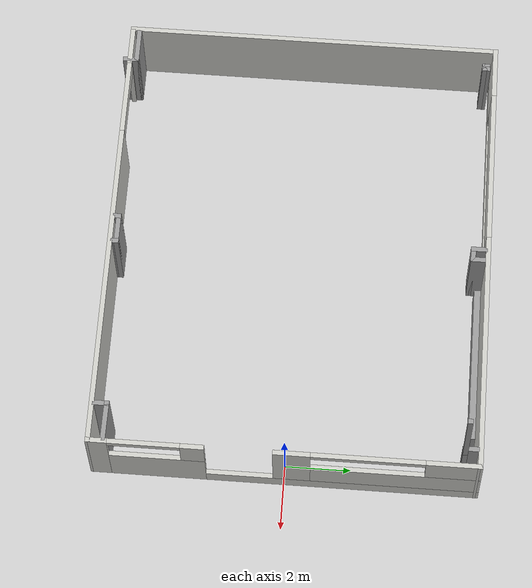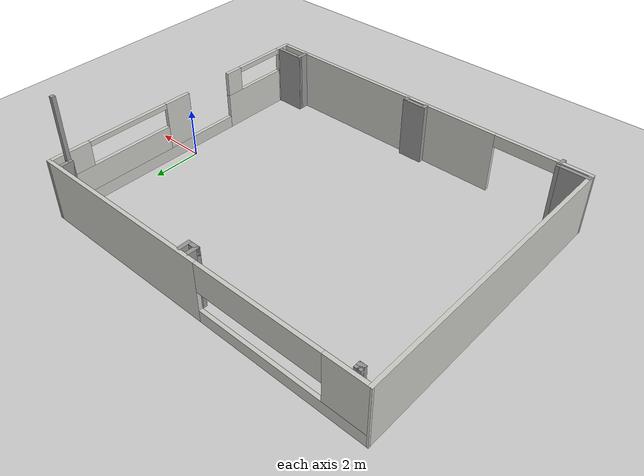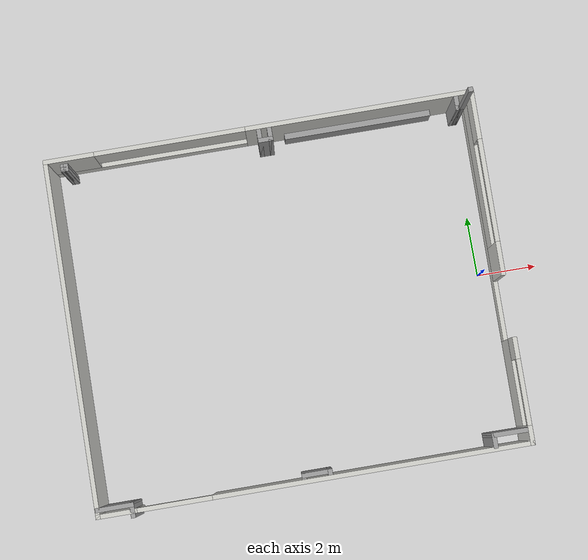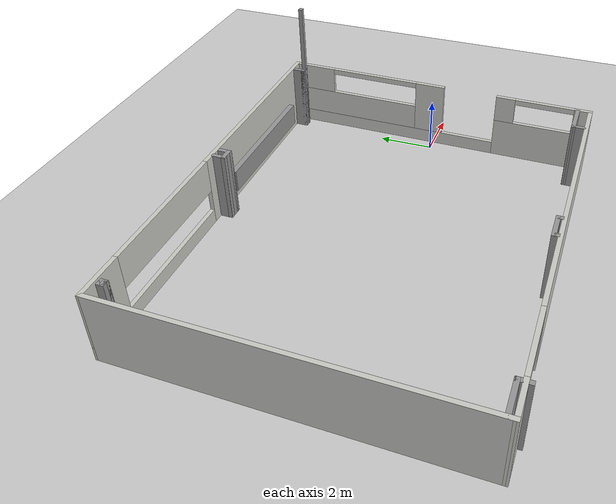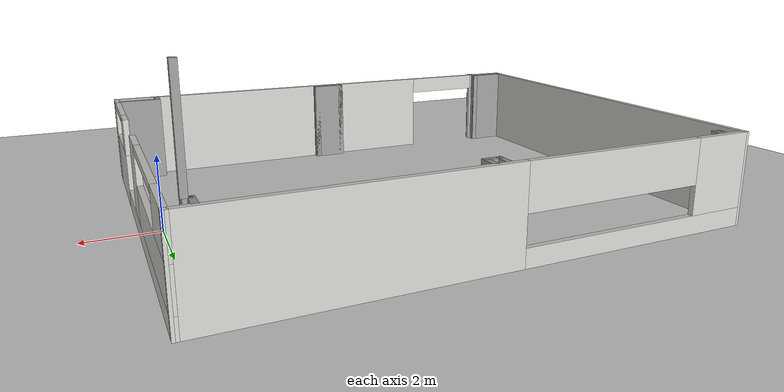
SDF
<sdf version="1.7">
 <world name="default">
  <light name="sun" type="directional">
   <pose>0 0 10 0 -0 0</pose>
   <diffuse>0.8 0.8 0.8 1</diffuse>
   <specular>0.2 0.2 0.2 1</specular>
   <attenuation>
    <range>1000</range>
    <constant>0.9</constant>
    <linear>0.01</linear>
    <quadratic>0.001</quadratic>
   </attenuation>
   <direction>-0.5 0.1 -0.9</direction>
   <spot><inner_angle>0</inner_angle><outer_angle>0</outer_angle><falloff>0</falloff></spot>
  </light>
  <model name="ground_plane">
   <static>1</static>
   <link name="link">
    <collision name="collision">
     <geometry><plane><normal>0 0 1</normal><size>100 100</size></plane></geometry>
     <surface>
      <contact><collide_bitmask>65535</collide_bitmask></contact>
      <friction><ode><mu>100</mu><mu2>50</mu2></ode></friction>
     </surface>
    </collision>
    <visual name="visual">
     <cast_shadows>0</cast_shadows>
     <geometry><plane><normal>0 0 1</normal><size>100 100</size></plane></geometry>
     <material>
      <script><uri>file://media/materials/scripts/gazebo.material</uri><name>Gazebo/Grey</name></script>
     </material>
    </visual>
   </link>
  </model>
  <gravity>0 0 -9.8</gravity>
  <magnetic_field>6e-06 2.3e-05 -4.2e-05</magnetic_field>
  <atmosphere type="adiabatic"/>
  <physics type="ode">
   <max_step_size>0.001</max_step_size>
   <real_time_factor>1</real_time_factor>
   <real_time_update_rate>1000</real_time_update_rate>
  </physics>
  <scene><ambient>0.4 0.4 0.4 1</ambient><background>0.7 0.7 0.7 1</background><shadows>1</shadows></scene>
  <spherical_coordinates>
   <surface_model>EARTH_WGS84</surface_model>
   <latitude_deg>0</latitude_deg>
   <longitude_deg>0</longitude_deg>
   <elevation>0</elevation>
   <heading_deg>0</heading_deg>
  </spherical_coordinates>
  <model name="salon">
   <pose>-6.5513 -0.067085 0 0 -0 0</pose>
   <link name="Floor_3">
    <collision name="Floor_3_Collision">
     <geometry><box><size>0 0 0.1</size></box></geometry>
     <pose>0 0 0.05 0 -0 0</pose>
    </collision>
    <visual name="Floor_3_Visual">
     <pose>0 0 0.05 0 -0 0</pose>
     <geometry><box><size>0 0 0.1</size></box></geometry>
     <material>
      <script><uri>file://media/materials/scripts/gazebo.material</uri><name>Gazebo/Grey</name></script>
      <ambient>1 1 1 1</ambient>
     </material>
     <meta><layer>1</layer></meta>
    </visual>
    <pose>6.68979 5.40037 2.5 0 -0 0</pose>
   </link>
   <link name="Wall_0">
    <collision name="Wall_0_Collision">
     <geometry><box><size>11.7483 0.15 2.5</size></box></geometry>
     <pose>0 0 1.25 0 -0 0</pose>
    </collision>
    <visual name="Wall_0_Visual">
     <pose>0 0 1.25 0 -0 0</pose>
     <geometry><box><size>11.7483 0.15 2.5</size></box></geometry>
     <material>
      <script><uri>file://media/materials/scripts/gazebo.material</uri><name>Gazebo/CeilingTiled</name></script>
      <ambient>1 1 1 1</ambient>
     </material>
     <meta><layer>0</layer></meta>
    </visual>
    <pose>-7.05 0.070271 0 0 -0 -1.57811</pose>
   </link>
   <link name="Wall_1">
    <pose>-0.042441 -5.72871 0 0 -0 0</pose>
    <visual name="Wall_1_Visual_0">
     <pose>-6.45685 0 1.25 0 -0 0</pose>
     <geometry><box><size>1.33631 0.15 2.5</size></box></geometry>
     <material>
      <script><uri>file://media/materials/scripts/gazebo.material</uri><name>Gazebo/CeilingTiled</name></script>
      <ambient>1 1 1 1</ambient>
     </material>
     <meta><layer>0</layer></meta>
    </visual>
    <collision name="Wall_1_Collision_0">
     <geometry><box><size>1.33631 0.15 2.5</size></box></geometry>
     <pose>-6.45685 0 1.25 0 -0 0</pose>
    </collision>
    <visual name="Wall_1_Visual_1">
     <pose>1.88931 0 1.25 0 -0 0</pose>
     <geometry><box><size>10.4714 0.15 2.5</size></box></geometry>
     <material>
      <script><uri>file://media/materials/scripts/gazebo.material</uri><name>Gazebo/CeilingTiled</name></script>
      <ambient>1 1 1 1</ambient>
     </material>
     <meta><layer>0</layer></meta>
    </visual>
    <collision name="Wall_1_Collision_1">
     <geometry><box><size>10.4714 0.15 2.5</size></box></geometry>
     <pose>1.88931 0 1.25 0 -0 0</pose>
    </collision>
    <visual name="Wall_1_Visual_2">
     <pose>-4.56753 0 2.25 0 -0 0</pose>
     <geometry><box><size>2.44232 0.15 0.5</size></box></geometry>
     <material>
      <script><uri>file://media/materials/scripts/gazebo.material</uri><name>Gazebo/CeilingTiled</name></script>
      <ambient>1 1 1 1</ambient>
     </material>
     <meta><layer>0</layer></meta>
    </visual>
    <collision name="Wall_1_Collision_2">
     <geometry><box><size>2.44232 0.15 0.5</size></box></geometry>
     <pose>-4.56753 0 2.25 0 -0 0</pose>
    </collision>
   </link>
   <link name="Wall_14">
    <collision name="Wall_14_Collision">
     <geometry><box><size>0.5 0.15 2.5</size></box></geometry>
     <pose>0 0 1.25 0 -0 0</pose>
    </collision>
    <visual name="Wall_14_Visual">
     <pose>0 0 1.25 0 -0 0</pose>
     <geometry><box><size>0.5 0.15 2.5</size></box></geometry>
     <material>
      <script><uri>file://media/materials/scripts/gazebo.material</uri><name>Gazebo/Grey</name></script>
      <ambient>1 1 1 1</ambient>
     </material>
     <meta><layer>0</layer></meta>
    </visual>
    <pose>6.55708 5.57537 0 0 -0 -1.5708</pose>
   </link>
   <link name="Wall_16">
    <collision name="Wall_16_Collision">
     <geometry><box><size>0.25 0.15 2.5</size></box></geometry>
     <pose>0 0 1.25 0 -0 0</pose>
    </collision>
    <visual name="Wall_16_Visual">
     <pose>0 0 1.25 0 -0 0</pose>
     <geometry><box><size>0.25 0.15 2.5</size></box></geometry>
     <material>
      <script><uri>file://media/materials/scripts/gazebo.material</uri><name>Gazebo/Grey</name></script>
      <ambient>1 1 1 1</ambient>
     </material>
     <meta><layer>0</layer></meta>
    </visual>
    <pose>6.60708 5.40037 0 0 -0 0</pose>
   </link>
   <link name="Wall_17">
    <collision name="Wall_17_Collision">
     <geometry><box><size>0.16 0.15 2.5</size></box></geometry>
     <pose>0 0 1.25 0 -0 0</pose>
    </collision>
    <visual name="Wall_17_Visual">
     <pose>0 0 1.25 0 -0 0</pose>
     <geometry><box><size>0.16 0.15 2.5</size></box></geometry>
     <material>
      <script><uri>file://media/materials/scripts/gazebo.material</uri><name>Gazebo/Grey</name></script>
      <ambient>1 1 1 1</ambient>
     </material>
     <meta><layer>0</layer></meta>
    </visual>
    <pose>6.66208 5.40037 0 0 -0 0</pose>
   </link>
   <link name="Wall_18">
    <collision name="Wall_18_Collision">
     <geometry><box><size>0.16 0.15 2.5</size></box></geometry>
     <pose>0 0 1.25 0 -0 0</pose>
    </collision>
    <visual name="Wall_18_Visual">
     <pose>0 0 1.25 0 -0 0</pose>
     <geometry><box><size>0.16 0.15 2.5</size></box></geometry>
     <material>
      <script><uri>file://media/materials/scripts/gazebo.material</uri><name>Gazebo/Grey</name></script>
      <ambient>1 1 1 1</ambient>
     </material>
     <meta><layer>0</layer></meta>
    </visual>
    <pose>6.67208 5.40037 0 0 -0 0</pose>
   </link>
   <link name="Wall_19">
    <collision name="Wall_19_Collision">
     <geometry><box><size>0.16 0.15 2.5</size></box></geometry>
     <pose>0 0 1.25 0 -0 0</pose>
    </collision>
    <visual name="Wall_19_Visual">
     <pose>0 0 1.25 0 -0 0</pose>
     <geometry><box><size>0.16 0.15 2.5</size></box></geometry>
     <material>
      <script><uri>file://media/materials/scripts/gazebo.material</uri><name>Gazebo/Grey</name></script>
      <ambient>1 1 1 1</ambient>
     </material>
     <meta><layer>0</layer></meta>
    </visual>
    <pose>6.68208 5.40037 0 0 -0 0</pose>
   </link>
   <link name="Wall_2">
    <pose>7.05 0.070271 0 0 -0 1.56348</pose>
    <visual name="Wall_2_Visual_0">
     <pose>-5.55328 0 1.25 0 -0 0</pose>
     <geometry><box><size>0.641724 0.15 2.5</size></box></geometry>
     <material>
      <script><uri>file://media/materials/scripts/gazebo.material</uri><name>Gazebo/CeilingTiled</name></script>
      <ambient>1 1 1 1</ambient>
     </material>
     <meta><layer>0</layer></meta>
    </visual>
    <collision name="Wall_2_Collision_0">
     <geometry><box><size>0.641724 0.15 2.5</size></box></geometry>
     <pose>-5.55328 0 1.25 0 -0 0</pose>
    </collision>
    <visual name="Wall_2_Visual_1">
     <pose>-3.79057 0 0.75 0 -0 0</pose>
     <geometry><box><size>2.88368 0.15 1.5</size></box></geometry>
     <material>
      <script><uri>file://media/materials/scripts/gazebo.material</uri><name>Gazebo/CeilingTiled</name></script>
      <ambient>1 1 1 1</ambient>
     </material>
     <meta><layer>0</layer></meta>
    </visual>
    <collision name="Wall_2_Collision_1">
     <geometry><box><size>2.88368 0.15 1.5</size></box></geometry>
     <pose>-3.79057 0 0.75 0 -0 0</pose>
    </collision>
    <visual name="Wall_2_Visual_2">
     <pose>1.7627 0 0.25 0 -0 0</pose>
     <geometry><box><size>8.22287 0.15 0.5</size></box></geometry>
     <material>
      <script><uri>file://media/materials/scripts/gazebo.material</uri><name>Gazebo/CeilingTiled</name></script>
      <ambient>1 1 1 1</ambient>
     </material>
     <meta><layer>0</layer></meta>
    </visual>
    <collision name="Wall_2_Collision_2">
     <geometry><box><size>8.22287 0.15 0.5</size></box></geometry>
     <pose>1.7627 0 0.25 0 -0 0</pose>
    </collision>
    <visual name="Wall_2_Visual_3">
     <pose>0.231107 0 1.5 0 -0 0</pose>
     <geometry><box><size>1.11968 0.15 2</size></box></geometry>
     <material>
      <script><uri>file://media/materials/scripts/gazebo.material</uri><name>Gazebo/CeilingTiled</name></script>
      <ambient>1 1 1 1</ambient>
     </material>
     <meta><layer>0</layer></meta>
    </visual>
    <collision name="Wall_2_Collision_3">
     <geometry><box><size>1.11968 0.15 2</size></box></geometry>
     <pose>0.231107 0 1.5 0 -0 0</pose>
    </collision>
    <visual name="Wall_2_Visual_4">
     <pose>3.33254 0 1 0 -0 0</pose>
     <geometry><box><size>5.08319 0.15 1</size></box></geometry>
     <material>
      <script><uri>file://media/materials/scripts/gazebo.material</uri><name>Gazebo/CeilingTiled</name></script>
      <ambient>1 1 1 1</ambient>
     </material>
     <meta><layer>0</layer></meta>
    </visual>
    <collision name="Wall_2_Collision_4">
     <geometry><box><size>5.08319 0.15 1</size></box></geometry>
     <pose>3.33254 0 1 0 -0 0</pose>
    </collision>
    <visual name="Wall_2_Visual_5">
     <pose>-2.70857 0 2 0 -0 0</pose>
     <geometry><box><size>0.719681 0.15 1</size></box></geometry>
     <material>
      <script><uri>file://media/materials/scripts/gazebo.material</uri><name>Gazebo/CeilingTiled</name></script>
      <ambient>1 1 1 1</ambient>
     </material>
     <meta><layer>0</layer></meta>
    </visual>
    <collision name="Wall_2_Collision_5">
     <geometry><box><size>0.719681 0.15 1</size></box></geometry>
     <pose>-2.70857 0 2 0 -0 0</pose>
    </collision>
    <visual name="Wall_2_Visual_6">
     <pose>-2.70857 0 2 0 -0 0</pose>
     <geometry><box><size>0.719681 0.15 1</size></box></geometry>
     <material>
      <script><uri>file://media/materials/scripts/gazebo.material</uri><name>Gazebo/CeilingTiled</name></script>
      <ambient>1 1 1 1</ambient>
     </material>
     <meta><layer>0</layer></meta>
    </visual>
    <collision name="Wall_2_Collision_6">
     <geometry><box><size>0.719681 0.15 1</size></box></geometry>
     <pose>-2.70857 0 2 0 -0 0</pose>
    </collision>
    <visual name="Wall_2_Visual_7">
     <pose>5.03654 0 2 0 -0 0</pose>
     <geometry><box><size>1.67519 0.15 1</size></box></geometry>
     <material>
      <script><uri>file://media/materials/scripts/gazebo.material</uri><name>Gazebo/CeilingTiled</name></script>
      <ambient>1 1 1 1</ambient>
     </material>
     <meta><layer>0</layer></meta>
    </visual>
    <collision name="Wall_2_Collision_7">
     <geometry><box><size>1.67519 0.15 1</size></box></geometry>
     <pose>5.03654 0 2 0 -0 0</pose>
    </collision>
    <visual name="Wall_2_Visual_8">
     <pose>-4.15041 0 2.4 0 -0 0</pose>
     <geometry><box><size>2.164 0.15 0.2</size></box></geometry>
     <material>
      <script><uri>file://media/materials/scripts/gazebo.material</uri><name>Gazebo/CeilingTiled</name></script>
      <ambient>1 1 1 1</ambient>
     </material>
     <meta><layer>0</layer></meta>
    </visual>
    <collision name="Wall_2_Collision_8">
     <geometry><box><size>2.164 0.15 0.2</size></box></geometry>
     <pose>-4.15041 0 2.4 0 -0 0</pose>
    </collision>
    <visual name="Wall_2_Visual_9">
     <pose>2.49495 0 2.4 0 -0 0</pose>
     <geometry><box><size>3.408 0.15 0.2</size></box></geometry>
     <material>
      <script><uri>file://media/materials/scripts/gazebo.material</uri><name>Gazebo/CeilingTiled</name></script>
      <ambient>1 1 1 1</ambient>
     </material>
     <meta><layer>0</layer></meta>
    </visual>
    <collision name="Wall_2_Collision_9">
     <geometry><box><size>3.408 0.15 0.2</size></box></geometry>
     <pose>2.49495 0 2.4 0 -0 0</pose>
    </collision>
   </link>
   <link name="Wall_21">
    <collision name="Wall_21_Collision">
     <geometry><box><size>0.15 0.15 2.5</size></box></geometry>
     <pose>0 0 1.25 0 -0 0</pose>
    </collision>
    <visual name="Wall_21_Visual">
     <pose>0 0 1.25 0 -0 0</pose>
     <geometry><box><size>0.15 0.15 2.5</size></box></geometry>
     <material>
      <script><uri>file://media/materials/scripts/gazebo.material</uri><name>Gazebo/Grey</name></script>
      <ambient>1 1 1 1</ambient>
     </material>
     <meta><layer>0</layer></meta>
    </visual>
    <pose>6.67708 5.40037 0 0 -0 0</pose>
   </link>
   <link name="Wall_22">
    <collision name="Wall_22_Collision">
     <geometry><box><size>0.16 0.15 2.5</size></box></geometry>
     <pose>0 0 1.25 0 -0 0</pose>
    </collision>
    <visual name="Wall_22_Visual">
     <pose>0 0 1.25 0 -0 0</pose>
     <geometry><box><size>0.16 0.15 2.5</size></box></geometry>
     <material>
      <script><uri>file://media/materials/scripts/gazebo.material</uri><name>Gazebo/Grey</name></script>
      <ambient>1 1 1 1</ambient>
     </material>
     <meta><layer>0</layer></meta>
    </visual>
    <pose>6.68208 5.40037 0 0 -0 0</pose>
   </link>
   <link name="Wall_3">
    <pose>0.04244 5.86925 0 0 -0 3.14159</pose>
    <visual name="Wall_3_Visual_0">
     <pose>-3.33472 0 1.25 0 -0 0</pose>
     <geometry><box><size>7.58057 0.15 2.5</size></box></geometry>
     <material>
      <script><uri>file://media/materials/scripts/gazebo.material</uri><name>Gazebo/CeilingTiled</name></script>
      <ambient>1 1 1 1</ambient>
     </material>
     <meta><layer>0</layer></meta>
    </visual>
    <collision name="Wall_3_Collision_0">
     <geometry><box><size>7.58057 0.15 2.5</size></box></geometry>
     <pose>-3.33472 0 1.25 0 -0 0</pose>
    </collision>
    <visual name="Wall_3_Visual_1">
     <pose>3.79028 0 0.25 0 -0 0</pose>
     <geometry><box><size>6.66943 0.15 0.5</size></box></geometry>
     <material>
      <script><uri>file://media/materials/scripts/gazebo.material</uri><name>Gazebo/CeilingTiled</name></script>
      <ambient>1 1 1 1</ambient>
     </material>
     <meta><layer>0</layer></meta>
    </visual>
    <collision name="Wall_3_Collision_1">
     <geometry><box><size>6.66943 0.15 0.5</size></box></geometry>
     <pose>3.79028 0 0.25 0 -0 0</pose>
    </collision>
    <visual name="Wall_3_Visual_2">
     <pose>6.28757 0 1.5 0 -0 0</pose>
     <geometry><box><size>1.67486 0.15 2</size></box></geometry>
     <material>
      <script><uri>file://media/materials/scripts/gazebo.material</uri><name>Gazebo/CeilingTiled</name></script>
      <ambient>1 1 1 1</ambient>
     </material>
     <meta><layer>0</layer></meta>
    </visual>
    <collision name="Wall_3_Collision_2">
     <geometry><box><size>1.67486 0.15 2</size></box></geometry>
     <pose>6.28757 0 1.5 0 -0 0</pose>
    </collision>
    <visual name="Wall_3_Visual_3">
     <pose>2.95286 0 1.9 0 -0 0</pose>
     <geometry><box><size>4.99458 0.15 1.2</size></box></geometry>
     <material>
      <script><uri>file://media/materials/scripts/gazebo.material</uri><name>Gazebo/CeilingTiled</name></script>
      <ambient>1 1 1 1</ambient>
     </material>
     <meta><layer>0</layer></meta>
    </visual>
    <collision name="Wall_3_Collision_3">
     <geometry><box><size>4.99458 0.15 1.2</size></box></geometry>
     <pose>2.95286 0 1.9 0 -0 0</pose>
    </collision>
   </link>
   <link name="Wall_62">
    <collision name="Wall_62_Collision">
     <geometry><box><size>0.15 0.15 2.5</size></box></geometry>
     <pose>0 0 1.25 0 -0 0</pose>
    </collision>
    <visual name="Wall_62_Visual">
     <pose>0 0 1.25 0 -0 0</pose>
     <geometry><box><size>0.15 0.15 2.5</size></box></geometry>
     <material>
      <script><uri>file://media/materials/scripts/gazebo.material</uri><name>Gazebo/Grey</name></script>
      <ambient>1 1 1 1</ambient>
     </material>
     <meta><layer>1</layer></meta>
    </visual>
    <pose>6.68979 5.40037 2.5 0 -0 0</pose>
   </link>
   <link name="Wall_76">
    <collision name="Wall_76_Collision">
     <geometry><box><size>0.5 0.15 2.5</size></box></geometry>
     <pose>0 0 1.25 0 -0 0</pose>
    </collision>
    <visual name="Wall_76_Visual">
     <pose>0 0 1.25 0 -0 0</pose>
     <geometry><box><size>0.5 0.15 2.5</size></box></geometry>
     <material>
      <script><uri>file://media/materials/scripts/gazebo.material</uri><name>Gazebo/Grey</name></script>
      <ambient>1 1 1 1</ambient>
     </material>
     <meta><layer>0</layer></meta>
    </visual>
    <pose>0.018168 5.5906 0 0 -0 -1.5708</pose>
   </link>
   <link name="Wall_77">
    <collision name="Wall_77_Collision">
     <geometry><box><size>0.5 0.15 2.5</size></box></geometry>
     <pose>0 0 1.25 0 -0 0</pose>
    </collision>
    <visual name="Wall_77_Visual">
     <pose>0 0 1.25 0 -0 0</pose>
     <geometry><box><size>0.5 0.15 2.5</size></box></geometry>
     <material>
      <script><uri>file://media/materials/scripts/gazebo.material</uri><name>Gazebo/Grey</name></script>
      <ambient>1 1 1 1</ambient>
     </material>
     <meta><layer>0</layer></meta>
    </visual>
    <pose>0.193167 5.4156 0 0 -0 0</pose>
   </link>
   <link name="Wall_78">
    <collision name="Wall_78_Collision">
     <geometry><box><size>0.5 0.15 2.5</size></box></geometry>
     <pose>0 0 1.25 0 -0 0</pose>
    </collision>
    <visual name="Wall_78_Visual">
     <pose>0 0 1.25 0 -0 0</pose>
     <geometry><box><size>0.5 0.15 2.5</size></box></geometry>
     <material>
      <script><uri>file://media/materials/scripts/gazebo.material</uri><name>Gazebo/Grey</name></script>
      <ambient>1 1 1 1</ambient>
     </material>
     <meta><layer>0</layer></meta>
    </visual>
    <pose>0.368168 5.5906 0 0 -0 1.5708</pose>
   </link>
   <link name="Wall_80">
    <collision name="Wall_80_Collision">
     <geometry><box><size>0.25 0.15 2.5</size></box></geometry>
     <pose>0 0 1.25 0 -0 0</pose>
    </collision>
    <visual name="Wall_80_Visual">
     <pose>0 0 1.25 0 -0 0</pose>
     <geometry><box><size>0.25 0.15 2.5</size></box></geometry>
     <material>
      <script><uri>file://media/materials/scripts/gazebo.material</uri><name>Gazebo/Grey</name></script>
      <ambient>1 1 1 1</ambient>
     </material>
     <meta><layer>0</layer></meta>
    </visual>
    <pose>-6.46416 5.59187 0 0 -0 -1.5708</pose>
   </link>
   <link name="Wall_81">
    <collision name="Wall_81_Collision">
     <geometry><box><size>0.25 0.15 2.5</size></box></geometry>
     <pose>0 0 1.25 0 -0 0</pose>
    </collision>
    <visual name="Wall_81_Visual">
     <pose>0 0 1.25 0 -0 0</pose>
     <geometry><box><size>0.25 0.15 2.5</size></box></geometry>
     <material>
      <script><uri>file://media/materials/scripts/gazebo.material</uri><name>Gazebo/Grey</name></script>
      <ambient>1 1 1 1</ambient>
     </material>
     <meta><layer>0</layer></meta>
    </visual>
    <pose>-6.41416 5.54187 0 0 -0 0</pose>
   </link>
   <link name="Wall_82">
    <collision name="Wall_82_Collision">
     <geometry><box><size>0.25 0.15 2.5</size></box></geometry>
     <pose>0 0 1.25 0 -0 0</pose>
    </collision>
    <visual name="Wall_82_Visual">
     <pose>0 0 1.25 0 -0 0</pose>
     <geometry><box><size>0.25 0.15 2.5</size></box></geometry>
     <material>
      <script><uri>file://media/materials/scripts/gazebo.material</uri><name>Gazebo/Grey</name></script>
      <ambient>1 1 1 1</ambient>
     </material>
     <meta><layer>0</layer></meta>
    </visual>
    <pose>-6.36416 5.59187 0 0 -0 1.5708</pose>
   </link>
   <link name="Wall_84">
    <collision name="Wall_84_Collision">
     <geometry><box><size>0.5 0.15 2.5</size></box></geometry>
     <pose>0 0 1.25 0 -0 0</pose>
    </collision>
    <visual name="Wall_84_Visual">
     <pose>0 0 1.25 0 -0 0</pose>
     <geometry><box><size>0.5 0.15 2.5</size></box></geometry>
     <material>
      <script><uri>file://media/materials/scripts/gazebo.material</uri><name>Gazebo/Grey</name></script>
      <ambient>1 1 1 1</ambient>
     </material>
     <meta><layer>0</layer></meta>
    </visual>
    <pose>-5.97457 -5.6948 0 0 -0 1.5708</pose>
   </link>
   <link name="Wall_85">
    <collision name="Wall_85_Collision">
     <geometry><box><size>1.25 0.15 2.5</size></box></geometry>
     <pose>0 0 1.25 0 -0 0</pose>
    </collision>
    <visual name="Wall_85_Visual">
     <pose>0 0 1.25 0 -0 0</pose>
     <geometry><box><size>1.25 0.15 2.5</size></box></geometry>
     <material>
      <script><uri>file://media/materials/scripts/gazebo.material</uri><name>Gazebo/Grey</name></script>
      <ambient>1 1 1 1</ambient>
     </material>
     <meta><layer>0</layer></meta>
    </visual>
    <pose>-6.52457 -5.5198 0 0 -0 3.14159</pose>
   </link>
   <link name="Wall_87">
    <collision name="Wall_87_Collision">
     <geometry><box><size>0.5 0.15 2.5</size></box></geometry>
     <pose>0 0 1.25 0 -0 0</pose>
    </collision>
    <visual name="Wall_87_Visual">
     <pose>0 0 1.25 0 -0 0</pose>
     <geometry><box><size>0.5 0.15 2.5</size></box></geometry>
     <material>
      <script><uri>file://media/materials/scripts/gazebo.material</uri><name>Gazebo/Grey</name></script>
      <ambient>1 1 1 1</ambient>
     </material>
     <meta><layer>0</layer></meta>
    </visual>
    <pose>5.82282 -5.4562 0 0 -0 1.5708</pose>
   </link>
   <link name="Wall_88">
    <collision name="Wall_88_Collision">
     <geometry><box><size>1.25529 0.15 2.5</size></box></geometry>
     <pose>0 0 1.25 0 -0 0</pose>
    </collision>
    <visual name="Wall_88_Visual">
     <pose>0 0 1.25 0 -0 0</pose>
     <geometry><box><size>1.25529 0.15 2.5</size></box></geometry>
     <material>
      <script><uri>file://media/materials/scripts/gazebo.material</uri><name>Gazebo/Grey</name></script>
      <ambient>1 1 1 1</ambient>
     </material>
     <meta><layer>0</layer></meta>
    </visual>
    <pose>6.37543 -5.2812 0 0 -0 -0.00948</pose>
   </link>
   <link name="Wall_90">
    <collision name="Wall_90_Collision">
     <geometry><box><size>0.25 0.15 2.5</size></box></geometry>
     <pose>0 0 1.25 0 -0 0</pose>
    </collision>
    <visual name="Wall_90_Visual">
     <pose>0 0 1.25 0 -0 0</pose>
     <geometry><box><size>0.25 0.15 2.5</size></box></geometry>
     <material>
      <script><uri>file://media/materials/scripts/gazebo.material</uri><name>Gazebo/Grey</name></script>
      <ambient>1 1 1 1</ambient>
     </material>
     <meta><layer>0</layer></meta>
    </visual>
    <pose>-0.39285 -5.57982 0 0 -0 1.5708</pose>
   </link>
   <link name="Wall_91">
    <collision name="Wall_91_Collision">
     <geometry><box><size>1 0.15 2.5</size></box></geometry>
     <pose>0 0 1.25 0 -0 0</pose>
    </collision>
    <visual name="Wall_91_Visual">
     <pose>0 0 1.25 0 -0 0</pose>
     <geometry><box><size>1 0.15 2.5</size></box></geometry>
     <material>
      <script><uri>file://media/materials/scripts/gazebo.material</uri><name>Gazebo/Grey</name></script>
      <ambient>1 1 1 1</ambient>
     </material>
     <meta><layer>0</layer></meta>
    </visual>
    <pose>0.032151 -5.52982 0 0 -0 0</pose>
   </link>
   <link name="Wall_92">
    <collision name="Wall_92_Collision">
     <geometry><box><size>0.25 0.15 2.5</size></box></geometry>
     <pose>0 0 1.25 0 -0 0</pose>
    </collision>
    <visual name="Wall_92_Visual">
     <pose>0 0 1.25 0 -0 0</pose>
     <geometry><box><size>0.25 0.15 2.5</size></box></geometry>
     <material>
      <script><uri>file://media/materials/scripts/gazebo.material</uri><name>Gazebo/Grey</name></script>
      <ambient>1 1 1 1</ambient>
     </material>
     <meta><layer>0</layer></meta>
    </visual>
    <pose>0.45715 -5.57982 0 0 -0 -1.5708</pose>
   </link>
   <link name="Window_0">
    <collision name="Window_0_Collision">
     <geometry><box><size>4.92234 0.2 0.8</size></box></geometry>
     <pose>0 0 0.4 0 -0 0</pose>
    </collision>
    <visual name="Window_0_Visual">
     <pose>0 0 0.4 0 -0 0</pose>
     <geometry><box><size>4.92234 0.2 0.8</size></box></geometry>
     <material>
      <script><uri>file://media/materials/scripts/gazebo.material</uri><name>Gazebo/Grey</name></script>
     </material>
    </visual>
    <pose>3.31239 5.63994 0.5 0 -0 0</pose>
   </link>
   <static>1</static>
  </model>
 </world>
</sdf>
